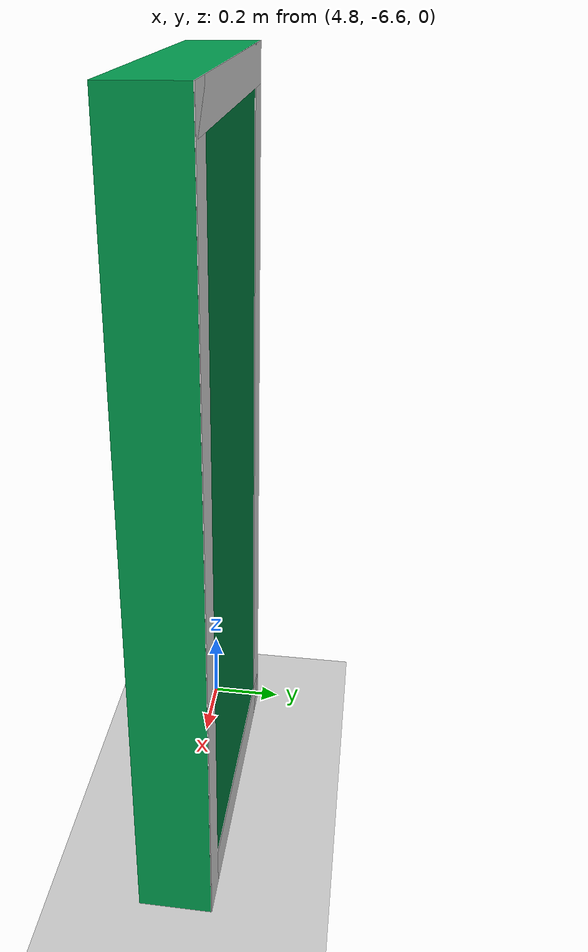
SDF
<sdf version="1.7">
 <world name="default">
  <model name="ground_plane">
   <static>1</static>
   <link name="link">
    <collision name="collision">
     <geometry><plane><normal>0 0 1</normal><size>100 100</size></plane></geometry>
     <surface><friction><ode><mu>100</mu><mu2>50</mu2></ode></friction></surface>
    </collision>
    <visual name="visual">
     <cast_shadows>0</cast_shadows>
     <geometry><plane><normal>0 0 1</normal><size>100 100</size></plane></geometry>
     <material>
      <script><uri>file://media/materials/scripts/gazebo.material</uri><name>Gazebo/Grey</name></script>
     </material>
    </visual>
   </link>
  </model>
  <model name="fire_exit_green_3">
   <link name="link_1">
    <pose>0 0 0.993 0 -0 0</pose>
    <visual name="visual">
     <geometry><box><size>0.891572 0.186765 1.98613</size></box></geometry>
     <material>
      <ambient>0 0.6 0.3 1</ambient>
      <diffuse>0 0.6 0.3 1</diffuse>
      <specular>0.2 0.2 0.2 1</specular>
     </material>
    </visual>
    <visual name="border_left">
     <pose>0.395 0.094 0 0 -0 0</pose>
     <geometry><box><size>0.1 0.002 1.986</size></box></geometry>
     <material><ambient>1 1 1 1</ambient><diffuse>1 1 1 1</diffuse></material>
    </visual>
    <visual name="border_right">
     <pose>-0.395 0.094 0 0 -0 0</pose>
     <geometry><box><size>0.1 0.002 1.986</size></box></geometry>
     <material><ambient>1 1 1 1</ambient><diffuse>1 1 1 1</diffuse></material>
    </visual>
    <visual name="border_top">
     <pose>0 0.094 0.943 0 -0 0</pose>
     <geometry><box><size>0.891 0.002 0.1</size></box></geometry>
     <material><ambient>1 1 1 1</ambient><diffuse>1 1 1 1</diffuse></material>
    </visual>
    <visual name="border_bottom">
     <pose>0 0.094 -0.943 0 -0 0</pose>
     <geometry><box><size>0.891 0.002 0.1</size></box></geometry>
     <material><ambient>1 1 1 1</ambient><diffuse>1 1 1 1</diffuse></material>
    </visual>
    <collision name="collision"><geometry><box><size>0.891572 0.186765 1.98613</size></box></geometry></collision>
    <inertial>
     <inertia><ixx>1</ixx><ixy>0</ixy><ixz>0</ixz><iyy>1</iyy><iyz>0</iyz><izz>1</izz></inertia>
     <mass>1</mass>
    </inertial>
   </link>
   <static>0</static>
   <pose>5.26021 -6.56288 0.006176 0.011902 -0 -0.014946</pose>
  </model>
 </world>
</sdf>
